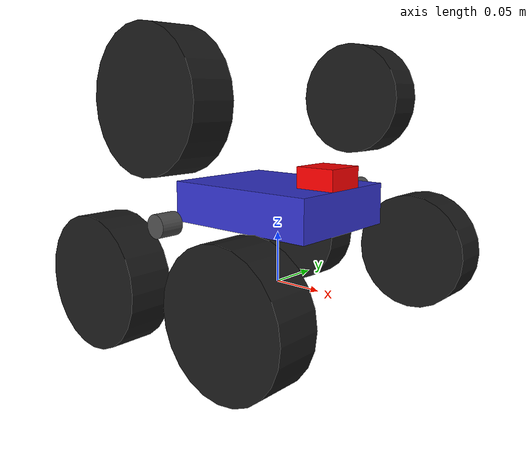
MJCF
<?xml version="1.0"?>
<mujoco model="tristar_robot">
  <compiler angle="degree" coordinate="local" inertiafromgeom="true"/>
  <option timestep="0.002" gravity="0 0 -9.81"/>

  <default>
    <joint armature="0.01" damping="0.1"/>
    <geom friction="1.0" solimp="0.9 0.95 0.001 0.5 2" solref="0.02 1"/>
    <motor ctrllimited="true" ctrlrange="-1.0 1.0"/>
  </default>

  <worldbody>
    <!-- Main Body (Base) -->
    <body name="base_link" pos="0 0 0.08">
      <freejoint/>
      <geom type="box" size="0.08 0.06 0.02" rgba="0.2 0.2 0.8 1" mass="2.0"/>

      <!-- Visual Marker for Front -->
      <geom type="box" pos="0.06 0 0.02" size="0.02 0.02 0.02" rgba="1 0 0 1" mass="0.05"/>

      <!-- Left Tri-star Wheel Assembly -->
      <body name="left_tristar" pos="0 0.14 0" euler="0 0 0">
        <!-- Tri-star frame (triangle) -->
        <geom type="cylinder" size="0.01 0.01" rgba="0.3 0.3 0.3 1" mass="0.5" zaxis="0 1 0"/>
        <joint name="left_tristar_joint" type="hinge" axis="0 1 0" damping="10.0" armature="0.01"/>

        <!-- Wheel 1 (bottom-front) -->
        <body name="left_wheel_1" pos="0.08 0 -0.06" zaxis="0 1 0">
          <joint name="left_wheel_1_joint" type="hinge" axis="0 0 1" damping="0.01" armature="0.005"/>
          <geom type="cylinder" size="0.06 0.02" rgba="0.1 0.1 0.1 1" mass="0.5" friction="1.5 0.005 0.0001"/>
        </body>

        <!-- Wheel 2 (bottom-back) -->
        <body name="left_wheel_2" pos="-0.08 0 -0.06" zaxis="0 1 0">
          <joint name="left_wheel_2_joint" type="hinge" axis="0 0 1" damping="0.01" armature="0.005"/>
          <geom type="cylinder" size="0.06 0.02" rgba="0.1 0.1 0.1 1" mass="0.5" friction="1.5 0.005 0.0001"/>
        </body>

        <!-- Wheel 3 (top) -->
        <body name="left_wheel_3" pos="0 0 0.10" zaxis="0 1 0">
          <joint name="left_wheel_3_joint" type="hinge" axis="0 0 1" damping="0.01" armature="0.005"/>
          <geom type="cylinder" size="0.06 0.02" rgba="0.1 0.1 0.1 1" mass="0.5" friction="1.5 0.005 0.0001"/>
        </body>
      </body>

      <!-- Right Tri-star Wheel Assembly (mirror) -->
      <body name="right_tristar" pos="0 -0.14 0" euler="0 0 0">
        <geom type="cylinder" size="0.01 0.01" rgba="0.3 0.3 0.3 1" mass="0.5" zaxis="0 1 0"/>
        <joint name="right_tristar_joint" type="hinge" axis="0 1 0" damping="10.0" armature="0.01"/>

        <body name="right_wheel_1" pos="0.08 0 -0.06" zaxis="0 1 0">
          <joint name="right_wheel_1_joint" type="hinge" axis="0 0 1" damping="0.01" armature="0.005"/>
          <geom type="cylinder" size="0.06 0.02" rgba="0.1 0.1 0.1 1" mass="0.5" friction="1.5 0.005 0.0001"/>
        </body>

        <body name="right_wheel_2" pos="-0.08 0 -0.06" zaxis="0 1 0">
          <joint name="right_wheel_2_joint" type="hinge" axis="0 0 1" damping="0.01" armature="0.005"/>
          <geom type="cylinder" size="0.06 0.02" rgba="0.1 0.1 0.1 1" mass="0.5" friction="1.5 0.005 0.0001"/>
        </body>

        <body name="right_wheel_3" pos="0 0 0.10" zaxis="0 1 0">
          <joint name="right_wheel_3_joint" type="hinge" axis="0 0 1" damping="0.01" armature="0.005"/>
          <geom type="cylinder" size="0.06 0.02" rgba="0.1 0.1 0.1 1" mass="0.5" friction="1.5 0.005 0.0001"/>
        </body>
      </body>

      <!-- Camera (optional) - Removed to avoid headless rendering issues -->
    </body>
  </worldbody>

  <actuator>
    <!-- Frame motors (High torque for climbing) -->
    <motor name="left_frame_motor" joint="left_tristar_joint" gear="100"/>
    <motor name="right_frame_motor" joint="right_tristar_joint" gear="100"/>

    <!-- Wheel motors (Speed for driving) -->
    <motor name="left_wheel_1_motor" joint="left_wheel_1_joint" gear="50"/>
    <motor name="left_wheel_2_motor" joint="left_wheel_2_joint" gear="50"/>
    <motor name="left_wheel_3_motor" joint="left_wheel_3_joint" gear="50"/>

    <motor name="right_wheel_1_motor" joint="right_wheel_1_joint" gear="50"/>
    <motor name="right_wheel_2_motor" joint="right_wheel_2_joint" gear="50"/>
    <motor name="right_wheel_3_motor" joint="right_wheel_3_joint" gear="50"/>
  </actuator>
</mujoco>
